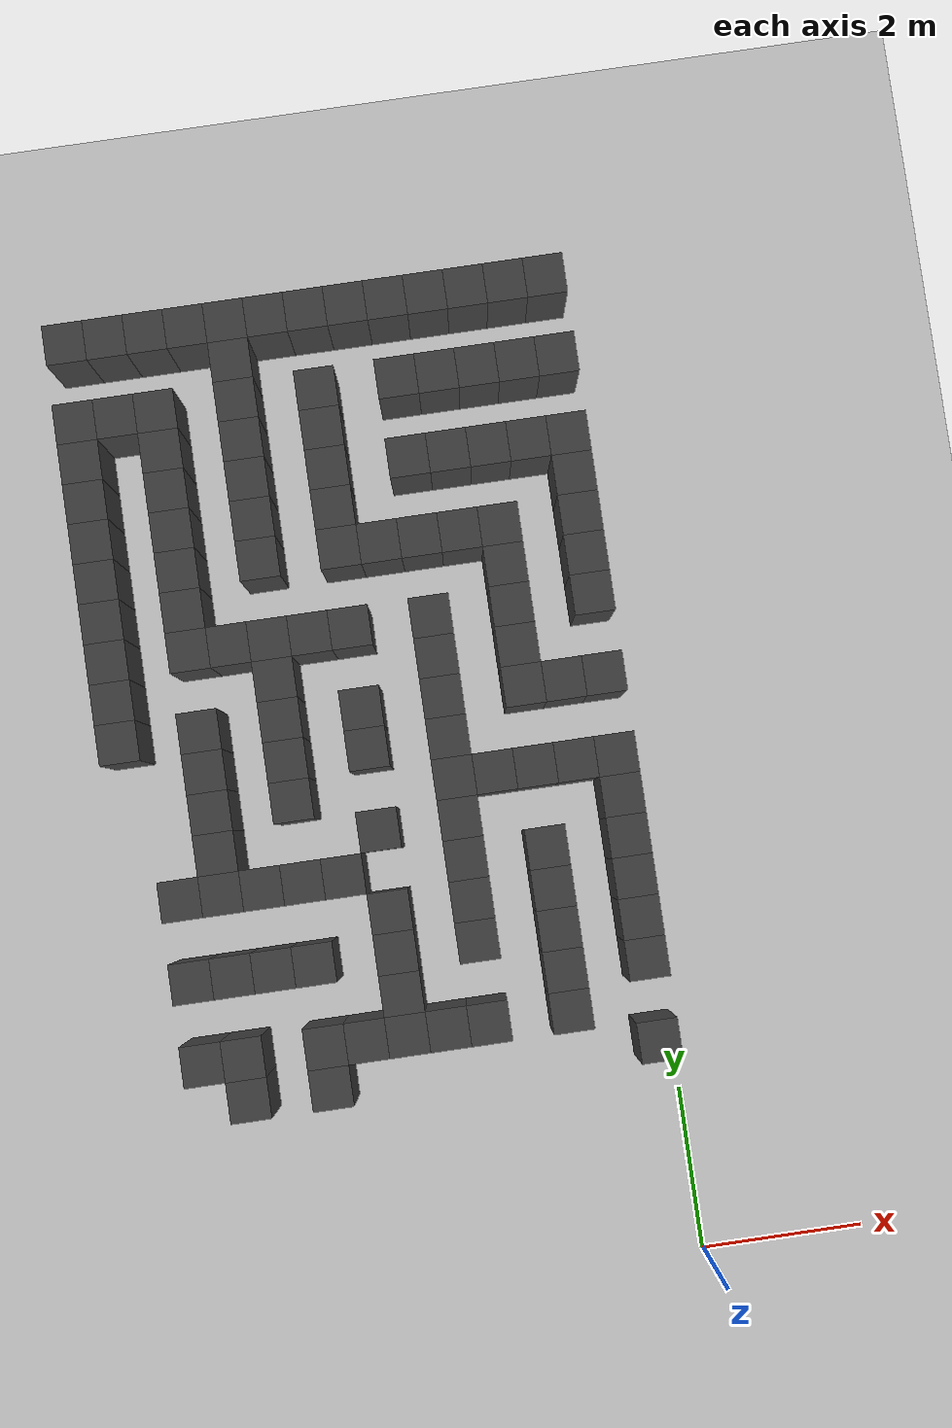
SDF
<sdf version="1.7">
 <world name="map_16884">
  <model name="ground_plane">
   <static>true</static>
   <link name="link">
    <collision name="collision">
     <geometry><plane><normal>0 0 1</normal><size>200 200</size></plane></geometry>
    </collision>
    <visual name="visual">
     <geometry><plane><normal>0 0 1</normal><size>200 200</size></plane></geometry>
     <material><ambient>0.8 0.8 0.8 1</ambient><diffuse>0.8 0.8 0.8 1</diffuse></material>
    </visual>
   </link>
  </model>
  <model name="maze_environment">
   <static>true</static>
   <link name="wall_12">
    <pose>-6.250 12.250 0.500 0 0 0</pose>
    <collision name="col"><geometry><box><size>0.5 0.5 1.0</size></box></geometry></collision>
    <visual name="vis">
     <geometry><box><size>0.5 0.5 1.0</size></box></geometry>
     <material><ambient>0.15 0.15 0.15 1</ambient><diffuse>0.25 0.25 0.25 1</diffuse></material>
    </visual>
   </link>
   <link name="wall_13">
    <pose>-5.750 12.250 0.500 0 0 0</pose>
    <collision name="col"><geometry><box><size>0.5 0.5 1.0</size></box></geometry></collision>
    <visual name="vis">
     <geometry><box><size>0.5 0.5 1.0</size></box></geometry>
     <material><ambient>0.15 0.15 0.15 1</ambient><diffuse>0.25 0.25 0.25 1</diffuse></material>
    </visual>
   </link>
   <link name="wall_14">
    <pose>-5.250 12.250 0.500 0 0 0</pose>
    <collision name="col"><geometry><box><size>0.5 0.5 1.0</size></box></geometry></collision>
    <visual name="vis">
     <geometry><box><size>0.5 0.5 1.0</size></box></geometry>
     <material><ambient>0.15 0.15 0.15 1</ambient><diffuse>0.25 0.25 0.25 1</diffuse></material>
    </visual>
   </link>
   <link name="wall_15">
    <pose>-4.750 12.250 0.500 0 0 0</pose>
    <collision name="col"><geometry><box><size>0.5 0.5 1.0</size></box></geometry></collision>
    <visual name="vis">
     <geometry><box><size>0.5 0.5 1.0</size></box></geometry>
     <material><ambient>0.15 0.15 0.15 1</ambient><diffuse>0.25 0.25 0.25 1</diffuse></material>
    </visual>
   </link>
   <link name="wall_16">
    <pose>-4.250 12.250 0.500 0 0 0</pose>
    <collision name="col"><geometry><box><size>0.5 0.5 1.0</size></box></geometry></collision>
    <visual name="vis">
     <geometry><box><size>0.5 0.5 1.0</size></box></geometry>
     <material><ambient>0.15 0.15 0.15 1</ambient><diffuse>0.25 0.25 0.25 1</diffuse></material>
    </visual>
   </link>
   <link name="wall_17">
    <pose>-3.750 12.250 0.500 0 0 0</pose>
    <collision name="col"><geometry><box><size>0.5 0.5 1.0</size></box></geometry></collision>
    <visual name="vis">
     <geometry><box><size>0.5 0.5 1.0</size></box></geometry>
     <material><ambient>0.15 0.15 0.15 1</ambient><diffuse>0.25 0.25 0.25 1</diffuse></material>
    </visual>
   </link>
   <link name="wall_18">
    <pose>-3.250 12.250 0.500 0 0 0</pose>
    <collision name="col"><geometry><box><size>0.5 0.5 1.0</size></box></geometry></collision>
    <visual name="vis">
     <geometry><box><size>0.5 0.5 1.0</size></box></geometry>
     <material><ambient>0.15 0.15 0.15 1</ambient><diffuse>0.25 0.25 0.25 1</diffuse></material>
    </visual>
   </link>
   <link name="wall_19">
    <pose>-2.750 12.250 0.500 0 0 0</pose>
    <collision name="col"><geometry><box><size>0.5 0.5 1.0</size></box></geometry></collision>
    <visual name="vis">
     <geometry><box><size>0.5 0.5 1.0</size></box></geometry>
     <material><ambient>0.15 0.15 0.15 1</ambient><diffuse>0.25 0.25 0.25 1</diffuse></material>
    </visual>
   </link>
   <link name="wall_20">
    <pose>-2.250 12.250 0.500 0 0 0</pose>
    <collision name="col"><geometry><box><size>0.5 0.5 1.0</size></box></geometry></collision>
    <visual name="vis">
     <geometry><box><size>0.5 0.5 1.0</size></box></geometry>
     <material><ambient>0.15 0.15 0.15 1</ambient><diffuse>0.25 0.25 0.25 1</diffuse></material>
    </visual>
   </link>
   <link name="wall_21">
    <pose>-1.750 12.250 0.500 0 0 0</pose>
    <collision name="col"><geometry><box><size>0.5 0.5 1.0</size></box></geometry></collision>
    <visual name="vis">
     <geometry><box><size>0.5 0.5 1.0</size></box></geometry>
     <material><ambient>0.15 0.15 0.15 1</ambient><diffuse>0.25 0.25 0.25 1</diffuse></material>
    </visual>
   </link>
   <link name="wall_22">
    <pose>-1.250 12.250 0.500 0 0 0</pose>
    <collision name="col"><geometry><box><size>0.5 0.5 1.0</size></box></geometry></collision>
    <visual name="vis">
     <geometry><box><size>0.5 0.5 1.0</size></box></geometry>
     <material><ambient>0.15 0.15 0.15 1</ambient><diffuse>0.25 0.25 0.25 1</diffuse></material>
    </visual>
   </link>
   <link name="wall_23">
    <pose>-0.750 12.250 0.500 0 0 0</pose>
    <collision name="col"><geometry><box><size>0.5 0.5 1.0</size></box></geometry></collision>
    <visual name="vis">
     <geometry><box><size>0.5 0.5 1.0</size></box></geometry>
     <material><ambient>0.15 0.15 0.15 1</ambient><diffuse>0.25 0.25 0.25 1</diffuse></material>
    </visual>
   </link>
   <link name="wall_24">
    <pose>-0.250 12.250 0.500 0 0 0</pose>
    <collision name="col"><geometry><box><size>0.5 0.5 1.0</size></box></geometry></collision>
    <visual name="vis">
     <geometry><box><size>0.5 0.5 1.0</size></box></geometry>
     <material><ambient>0.15 0.15 0.15 1</ambient><diffuse>0.25 0.25 0.25 1</diffuse></material>
    </visual>
   </link>
   <link name="wall_52">
    <pose>-4.250 11.750 0.500 0 0 0</pose>
    <collision name="col"><geometry><box><size>0.5 0.5 1.0</size></box></geometry></collision>
    <visual name="vis">
     <geometry><box><size>0.5 0.5 1.0</size></box></geometry>
     <material><ambient>0.15 0.15 0.15 1</ambient><diffuse>0.25 0.25 0.25 1</diffuse></material>
    </visual>
   </link>
   <link name="wall_67">
    <pose>-6.250 11.250 0.500 0 0 0</pose>
    <collision name="col"><geometry><box><size>0.5 0.5 1.0</size></box></geometry></collision>
    <visual name="vis">
     <geometry><box><size>0.5 0.5 1.0</size></box></geometry>
     <material><ambient>0.15 0.15 0.15 1</ambient><diffuse>0.25 0.25 0.25 1</diffuse></material>
    </visual>
   </link>
   <link name="wall_68">
    <pose>-5.750 11.250 0.500 0 0 0</pose>
    <collision name="col"><geometry><box><size>0.5 0.5 1.0</size></box></geometry></collision>
    <visual name="vis">
     <geometry><box><size>0.5 0.5 1.0</size></box></geometry>
     <material><ambient>0.15 0.15 0.15 1</ambient><diffuse>0.25 0.25 0.25 1</diffuse></material>
    </visual>
   </link>
   <link name="wall_69">
    <pose>-5.250 11.250 0.500 0 0 0</pose>
    <collision name="col"><geometry><box><size>0.5 0.5 1.0</size></box></geometry></collision>
    <visual name="vis">
     <geometry><box><size>0.5 0.5 1.0</size></box></geometry>
     <material><ambient>0.15 0.15 0.15 1</ambient><diffuse>0.25 0.25 0.25 1</diffuse></material>
    </visual>
   </link>
   <link name="wall_70">
    <pose>-4.250 11.250 0.500 0 0 0</pose>
    <collision name="col"><geometry><box><size>0.5 0.5 1.0</size></box></geometry></collision>
    <visual name="vis">
     <geometry><box><size>0.5 0.5 1.0</size></box></geometry>
     <material><ambient>0.15 0.15 0.15 1</ambient><diffuse>0.25 0.25 0.25 1</diffuse></material>
    </visual>
   </link>
   <link name="wall_71">
    <pose>-3.250 11.250 0.500 0 0 0</pose>
    <collision name="col"><geometry><box><size>0.5 0.5 1.0</size></box></geometry></collision>
    <visual name="vis">
     <geometry><box><size>0.5 0.5 1.0</size></box></geometry>
     <material><ambient>0.15 0.15 0.15 1</ambient><diffuse>0.25 0.25 0.25 1</diffuse></material>
    </visual>
   </link>
   <link name="wall_72">
    <pose>-2.250 11.250 0.500 0 0 0</pose>
    <collision name="col"><geometry><box><size>0.5 0.5 1.0</size></box></geometry></collision>
    <visual name="vis">
     <geometry><box><size>0.5 0.5 1.0</size></box></geometry>
     <material><ambient>0.15 0.15 0.15 1</ambient><diffuse>0.25 0.25 0.25 1</diffuse></material>
    </visual>
   </link>
   <link name="wall_73">
    <pose>-1.750 11.250 0.500 0 0 0</pose>
    <collision name="col"><geometry><box><size>0.5 0.5 1.0</size></box></geometry></collision>
    <visual name="vis">
     <geometry><box><size>0.5 0.5 1.0</size></box></geometry>
     <material><ambient>0.15 0.15 0.15 1</ambient><diffuse>0.25 0.25 0.25 1</diffuse></material>
    </visual>
   </link>
   <link name="wall_74">
    <pose>-1.250 11.250 0.500 0 0 0</pose>
    <collision name="col"><geometry><box><size>0.5 0.5 1.0</size></box></geometry></collision>
    <visual name="vis">
     <geometry><box><size>0.5 0.5 1.0</size></box></geometry>
     <material><ambient>0.15 0.15 0.15 1</ambient><diffuse>0.25 0.25 0.25 1</diffuse></material>
    </visual>
   </link>
   <link name="wall_75">
    <pose>-0.750 11.250 0.500 0 0 0</pose>
    <collision name="col"><geometry><box><size>0.5 0.5 1.0</size></box></geometry></collision>
    <visual name="vis">
     <geometry><box><size>0.5 0.5 1.0</size></box></geometry>
     <material><ambient>0.15 0.15 0.15 1</ambient><diffuse>0.25 0.25 0.25 1</diffuse></material>
    </visual>
   </link>
   <link name="wall_76">
    <pose>-0.250 11.250 0.500 0 0 0</pose>
    <collision name="col"><geometry><box><size>0.5 0.5 1.0</size></box></geometry></collision>
    <visual name="vis">
     <geometry><box><size>0.5 0.5 1.0</size></box></geometry>
     <material><ambient>0.15 0.15 0.15 1</ambient><diffuse>0.25 0.25 0.25 1</diffuse></material>
    </visual>
   </link>
   <link name="wall_98">
    <pose>-6.250 10.750 0.500 0 0 0</pose>
    <collision name="col"><geometry><box><size>0.5 0.5 1.0</size></box></geometry></collision>
    <visual name="vis">
     <geometry><box><size>0.5 0.5 1.0</size></box></geometry>
     <material><ambient>0.15 0.15 0.15 1</ambient><diffuse>0.25 0.25 0.25 1</diffuse></material>
    </visual>
   </link>
   <link name="wall_99">
    <pose>-5.250 10.750 0.500 0 0 0</pose>
    <collision name="col"><geometry><box><size>0.5 0.5 1.0</size></box></geometry></collision>
    <visual name="vis">
     <geometry><box><size>0.5 0.5 1.0</size></box></geometry>
     <material><ambient>0.15 0.15 0.15 1</ambient><diffuse>0.25 0.25 0.25 1</diffuse></material>
    </visual>
   </link>
   <link name="wall_100">
    <pose>-4.250 10.750 0.500 0 0 0</pose>
    <collision name="col"><geometry><box><size>0.5 0.5 1.0</size></box></geometry></collision>
    <visual name="vis">
     <geometry><box><size>0.5 0.5 1.0</size></box></geometry>
     <material><ambient>0.15 0.15 0.15 1</ambient><diffuse>0.25 0.25 0.25 1</diffuse></material>
    </visual>
   </link>
   <link name="wall_101">
    <pose>-3.250 10.750 0.500 0 0 0</pose>
    <collision name="col"><geometry><box><size>0.5 0.5 1.0</size></box></geometry></collision>
    <visual name="vis">
     <geometry><box><size>0.5 0.5 1.0</size></box></geometry>
     <material><ambient>0.15 0.15 0.15 1</ambient><diffuse>0.25 0.25 0.25 1</diffuse></material>
    </visual>
   </link>
   <link name="wall_114">
    <pose>-6.250 10.250 0.500 0 0 0</pose>
    <collision name="col"><geometry><box><size>0.5 0.5 1.0</size></box></geometry></collision>
    <visual name="vis">
     <geometry><box><size>0.5 0.5 1.0</size></box></geometry>
     <material><ambient>0.15 0.15 0.15 1</ambient><diffuse>0.25 0.25 0.25 1</diffuse></material>
    </visual>
   </link>
   <link name="wall_115">
    <pose>-5.250 10.250 0.500 0 0 0</pose>
    <collision name="col"><geometry><box><size>0.5 0.5 1.0</size></box></geometry></collision>
    <visual name="vis">
     <geometry><box><size>0.5 0.5 1.0</size></box></geometry>
     <material><ambient>0.15 0.15 0.15 1</ambient><diffuse>0.25 0.25 0.25 1</diffuse></material>
    </visual>
   </link>
   <link name="wall_116">
    <pose>-4.250 10.250 0.500 0 0 0</pose>
    <collision name="col"><geometry><box><size>0.5 0.5 1.0</size></box></geometry></collision>
    <visual name="vis">
     <geometry><box><size>0.5 0.5 1.0</size></box></geometry>
     <material><ambient>0.15 0.15 0.15 1</ambient><diffuse>0.25 0.25 0.25 1</diffuse></material>
    </visual>
   </link>
   <link name="wall_117">
    <pose>-3.250 10.250 0.500 0 0 0</pose>
    <collision name="col"><geometry><box><size>0.5 0.5 1.0</size></box></geometry></collision>
    <visual name="vis">
     <geometry><box><size>0.5 0.5 1.0</size></box></geometry>
     <material><ambient>0.15 0.15 0.15 1</ambient><diffuse>0.25 0.25 0.25 1</diffuse></material>
    </visual>
   </link>
   <link name="wall_118">
    <pose>-2.250 10.250 0.500 0 0 0</pose>
    <collision name="col"><geometry><box><size>0.5 0.5 1.0</size></box></geometry></collision>
    <visual name="vis">
     <geometry><box><size>0.5 0.5 1.0</size></box></geometry>
     <material><ambient>0.15 0.15 0.15 1</ambient><diffuse>0.25 0.25 0.25 1</diffuse></material>
    </visual>
   </link>
   <link name="wall_119">
    <pose>-1.750 10.250 0.500 0 0 0</pose>
    <collision name="col"><geometry><box><size>0.5 0.5 1.0</size></box></geometry></collision>
    <visual name="vis">
     <geometry><box><size>0.5 0.5 1.0</size></box></geometry>
     <material><ambient>0.15 0.15 0.15 1</ambient><diffuse>0.25 0.25 0.25 1</diffuse></material>
    </visual>
   </link>
   <link name="wall_120">
    <pose>-1.250 10.250 0.500 0 0 0</pose>
    <collision name="col"><geometry><box><size>0.5 0.5 1.0</size></box></geometry></collision>
    <visual name="vis">
     <geometry><box><size>0.5 0.5 1.0</size></box></geometry>
     <material><ambient>0.15 0.15 0.15 1</ambient><diffuse>0.25 0.25 0.25 1</diffuse></material>
    </visual>
   </link>
   <link name="wall_121">
    <pose>-0.750 10.250 0.500 0 0 0</pose>
    <collision name="col"><geometry><box><size>0.5 0.5 1.0</size></box></geometry></collision>
    <visual name="vis">
     <geometry><box><size>0.5 0.5 1.0</size></box></geometry>
     <material><ambient>0.15 0.15 0.15 1</ambient><diffuse>0.25 0.25 0.25 1</diffuse></material>
    </visual>
   </link>
   <link name="wall_122">
    <pose>-0.250 10.250 0.500 0 0 0</pose>
    <collision name="col"><geometry><box><size>0.5 0.5 1.0</size></box></geometry></collision>
    <visual name="vis">
     <geometry><box><size>0.5 0.5 1.0</size></box></geometry>
     <material><ambient>0.15 0.15 0.15 1</ambient><diffuse>0.25 0.25 0.25 1</diffuse></material>
    </visual>
   </link>
   <link name="wall_147">
    <pose>-6.250 9.750 0.500 0 0 0</pose>
    <collision name="col"><geometry><box><size>0.5 0.5 1.0</size></box></geometry></collision>
    <visual name="vis">
     <geometry><box><size>0.5 0.5 1.0</size></box></geometry>
     <material><ambient>0.15 0.15 0.15 1</ambient><diffuse>0.25 0.25 0.25 1</diffuse></material>
    </visual>
   </link>
   <link name="wall_148">
    <pose>-5.250 9.750 0.500 0 0 0</pose>
    <collision name="col"><geometry><box><size>0.5 0.5 1.0</size></box></geometry></collision>
    <visual name="vis">
     <geometry><box><size>0.5 0.5 1.0</size></box></geometry>
     <material><ambient>0.15 0.15 0.15 1</ambient><diffuse>0.25 0.25 0.25 1</diffuse></material>
    </visual>
   </link>
   <link name="wall_149">
    <pose>-4.250 9.750 0.500 0 0 0</pose>
    <collision name="col"><geometry><box><size>0.5 0.5 1.0</size></box></geometry></collision>
    <visual name="vis">
     <geometry><box><size>0.5 0.5 1.0</size></box></geometry>
     <material><ambient>0.15 0.15 0.15 1</ambient><diffuse>0.25 0.25 0.25 1</diffuse></material>
    </visual>
   </link>
   <link name="wall_150">
    <pose>-3.250 9.750 0.500 0 0 0</pose>
    <collision name="col"><geometry><box><size>0.5 0.5 1.0</size></box></geometry></collision>
    <visual name="vis">
     <geometry><box><size>0.5 0.5 1.0</size></box></geometry>
     <material><ambient>0.15 0.15 0.15 1</ambient><diffuse>0.25 0.25 0.25 1</diffuse></material>
    </visual>
   </link>
   <link name="wall_151">
    <pose>-0.250 9.750 0.500 0 0 0</pose>
    <collision name="col"><geometry><box><size>0.5 0.5 1.0</size></box></geometry></collision>
    <visual name="vis">
     <geometry><box><size>0.5 0.5 1.0</size></box></geometry>
     <material><ambient>0.15 0.15 0.15 1</ambient><diffuse>0.25 0.25 0.25 1</diffuse></material>
    </visual>
   </link>
   <link name="wall_167">
    <pose>-6.250 9.250 0.500 0 0 0</pose>
    <collision name="col"><geometry><box><size>0.5 0.5 1.0</size></box></geometry></collision>
    <visual name="vis">
     <geometry><box><size>0.5 0.5 1.0</size></box></geometry>
     <material><ambient>0.15 0.15 0.15 1</ambient><diffuse>0.25 0.25 0.25 1</diffuse></material>
    </visual>
   </link>
   <link name="wall_168">
    <pose>-5.250 9.250 0.500 0 0 0</pose>
    <collision name="col"><geometry><box><size>0.5 0.5 1.0</size></box></geometry></collision>
    <visual name="vis">
     <geometry><box><size>0.5 0.5 1.0</size></box></geometry>
     <material><ambient>0.15 0.15 0.15 1</ambient><diffuse>0.25 0.25 0.25 1</diffuse></material>
    </visual>
   </link>
   <link name="wall_169">
    <pose>-4.250 9.250 0.500 0 0 0</pose>
    <collision name="col"><geometry><box><size>0.5 0.5 1.0</size></box></geometry></collision>
    <visual name="vis">
     <geometry><box><size>0.5 0.5 1.0</size></box></geometry>
     <material><ambient>0.15 0.15 0.15 1</ambient><diffuse>0.25 0.25 0.25 1</diffuse></material>
    </visual>
   </link>
   <link name="wall_170">
    <pose>-3.250 9.250 0.500 0 0 0</pose>
    <collision name="col"><geometry><box><size>0.5 0.5 1.0</size></box></geometry></collision>
    <visual name="vis">
     <geometry><box><size>0.5 0.5 1.0</size></box></geometry>
     <material><ambient>0.15 0.15 0.15 1</ambient><diffuse>0.25 0.25 0.25 1</diffuse></material>
    </visual>
   </link>
   <link name="wall_171">
    <pose>-2.750 9.250 0.500 0 0 0</pose>
    <collision name="col"><geometry><box><size>0.5 0.5 1.0</size></box></geometry></collision>
    <visual name="vis">
     <geometry><box><size>0.5 0.5 1.0</size></box></geometry>
     <material><ambient>0.15 0.15 0.15 1</ambient><diffuse>0.25 0.25 0.25 1</diffuse></material>
    </visual>
   </link>
   <link name="wall_172">
    <pose>-2.250 9.250 0.500 0 0 0</pose>
    <collision name="col"><geometry><box><size>0.5 0.5 1.0</size></box></geometry></collision>
    <visual name="vis">
     <geometry><box><size>0.5 0.5 1.0</size></box></geometry>
     <material><ambient>0.15 0.15 0.15 1</ambient><diffuse>0.25 0.25 0.25 1</diffuse></material>
    </visual>
   </link>
   <link name="wall_173">
    <pose>-1.750 9.250 0.500 0 0 0</pose>
    <collision name="col"><geometry><box><size>0.5 0.5 1.0</size></box></geometry></collision>
    <visual name="vis">
     <geometry><box><size>0.5 0.5 1.0</size></box></geometry>
     <material><ambient>0.15 0.15 0.15 1</ambient><diffuse>0.25 0.25 0.25 1</diffuse></material>
    </visual>
   </link>
   <link name="wall_174">
    <pose>-1.250 9.250 0.500 0 0 0</pose>
    <collision name="col"><geometry><box><size>0.5 0.5 1.0</size></box></geometry></collision>
    <visual name="vis">
     <geometry><box><size>0.5 0.5 1.0</size></box></geometry>
     <material><ambient>0.15 0.15 0.15 1</ambient><diffuse>0.25 0.25 0.25 1</diffuse></material>
    </visual>
   </link>
   <link name="wall_175">
    <pose>-0.250 9.250 0.500 0 0 0</pose>
    <collision name="col"><geometry><box><size>0.5 0.5 1.0</size></box></geometry></collision>
    <visual name="vis">
     <geometry><box><size>0.5 0.5 1.0</size></box></geometry>
     <material><ambient>0.15 0.15 0.15 1</ambient><diffuse>0.25 0.25 0.25 1</diffuse></material>
    </visual>
   </link>
   <link name="wall_196">
    <pose>-6.250 8.750 0.500 0 0 0</pose>
    <collision name="col"><geometry><box><size>0.5 0.5 1.0</size></box></geometry></collision>
    <visual name="vis">
     <geometry><box><size>0.5 0.5 1.0</size></box></geometry>
     <material><ambient>0.15 0.15 0.15 1</ambient><diffuse>0.25 0.25 0.25 1</diffuse></material>
    </visual>
   </link>
   <link name="wall_197">
    <pose>-5.250 8.750 0.500 0 0 0</pose>
    <collision name="col"><geometry><box><size>0.5 0.5 1.0</size></box></geometry></collision>
    <visual name="vis">
     <geometry><box><size>0.5 0.5 1.0</size></box></geometry>
     <material><ambient>0.15 0.15 0.15 1</ambient><diffuse>0.25 0.25 0.25 1</diffuse></material>
    </visual>
   </link>
   <link name="wall_198">
    <pose>-1.250 8.750 0.500 0 0 0</pose>
    <collision name="col"><geometry><box><size>0.5 0.5 1.0</size></box></geometry></collision>
    <visual name="vis">
     <geometry><box><size>0.5 0.5 1.0</size></box></geometry>
     <material><ambient>0.15 0.15 0.15 1</ambient><diffuse>0.25 0.25 0.25 1</diffuse></material>
    </visual>
   </link>
   <link name="wall_199">
    <pose>-0.250 8.750 0.500 0 0 0</pose>
    <collision name="col"><geometry><box><size>0.5 0.5 1.0</size></box></geometry></collision>
    <visual name="vis">
     <geometry><box><size>0.5 0.5 1.0</size></box></geometry>
     <material><ambient>0.15 0.15 0.15 1</ambient><diffuse>0.25 0.25 0.25 1</diffuse></material>
    </visual>
   </link>
   <link name="wall_216">
    <pose>-6.250 8.250 0.500 0 0 0</pose>
    <collision name="col"><geometry><box><size>0.5 0.5 1.0</size></box></geometry></collision>
    <visual name="vis">
     <geometry><box><size>0.5 0.5 1.0</size></box></geometry>
     <material><ambient>0.15 0.15 0.15 1</ambient><diffuse>0.25 0.25 0.25 1</diffuse></material>
    </visual>
   </link>
   <link name="wall_217">
    <pose>-5.250 8.250 0.500 0 0 0</pose>
    <collision name="col"><geometry><box><size>0.5 0.5 1.0</size></box></geometry></collision>
    <visual name="vis">
     <geometry><box><size>0.5 0.5 1.0</size></box></geometry>
     <material><ambient>0.15 0.15 0.15 1</ambient><diffuse>0.25 0.25 0.25 1</diffuse></material>
    </visual>
   </link>
   <link name="wall_218">
    <pose>-4.750 8.250 0.500 0 0 0</pose>
    <collision name="col"><geometry><box><size>0.5 0.5 1.0</size></box></geometry></collision>
    <visual name="vis">
     <geometry><box><size>0.5 0.5 1.0</size></box></geometry>
     <material><ambient>0.15 0.15 0.15 1</ambient><diffuse>0.25 0.25 0.25 1</diffuse></material>
    </visual>
   </link>
   <link name="wall_219">
    <pose>-4.250 8.250 0.500 0 0 0</pose>
    <collision name="col"><geometry><box><size>0.5 0.5 1.0</size></box></geometry></collision>
    <visual name="vis">
     <geometry><box><size>0.5 0.5 1.0</size></box></geometry>
     <material><ambient>0.15 0.15 0.15 1</ambient><diffuse>0.25 0.25 0.25 1</diffuse></material>
    </visual>
   </link>
   <link name="wall_220">
    <pose>-3.750 8.250 0.500 0 0 0</pose>
    <collision name="col"><geometry><box><size>0.5 0.5 1.0</size></box></geometry></collision>
    <visual name="vis">
     <geometry><box><size>0.5 0.5 1.0</size></box></geometry>
     <material><ambient>0.15 0.15 0.15 1</ambient><diffuse>0.25 0.25 0.25 1</diffuse></material>
    </visual>
   </link>
   <link name="wall_221">
    <pose>-3.250 8.250 0.500 0 0 0</pose>
    <collision name="col"><geometry><box><size>0.5 0.5 1.0</size></box></geometry></collision>
    <visual name="vis">
     <geometry><box><size>0.5 0.5 1.0</size></box></geometry>
     <material><ambient>0.15 0.15 0.15 1</ambient><diffuse>0.25 0.25 0.25 1</diffuse></material>
    </visual>
   </link>
   <link name="wall_222">
    <pose>-2.250 8.250 0.500 0 0 0</pose>
    <collision name="col"><geometry><box><size>0.5 0.5 1.0</size></box></geometry></collision>
    <visual name="vis">
     <geometry><box><size>0.5 0.5 1.0</size></box></geometry>
     <material><ambient>0.15 0.15 0.15 1</ambient><diffuse>0.25 0.25 0.25 1</diffuse></material>
    </visual>
   </link>
   <link name="wall_223">
    <pose>-1.250 8.250 0.500 0 0 0</pose>
    <collision name="col"><geometry><box><size>0.5 0.5 1.0</size></box></geometry></collision>
    <visual name="vis">
     <geometry><box><size>0.5 0.5 1.0</size></box></geometry>
     <material><ambient>0.15 0.15 0.15 1</ambient><diffuse>0.25 0.25 0.25 1</diffuse></material>
    </visual>
   </link>
   <link name="wall_224">
    <pose>-0.250 8.250 0.500 0 0 0</pose>
    <collision name="col"><geometry><box><size>0.5 0.5 1.0</size></box></geometry></collision>
    <visual name="vis">
     <geometry><box><size>0.5 0.5 1.0</size></box></geometry>
     <material><ambient>0.15 0.15 0.15 1</ambient><diffuse>0.25 0.25 0.25 1</diffuse></material>
    </visual>
   </link>
   <link name="wall_244">
    <pose>-6.250 7.750 0.500 0 0 0</pose>
    <collision name="col"><geometry><box><size>0.5 0.5 1.0</size></box></geometry></collision>
    <visual name="vis">
     <geometry><box><size>0.5 0.5 1.0</size></box></geometry>
     <material><ambient>0.15 0.15 0.15 1</ambient><diffuse>0.25 0.25 0.25 1</diffuse></material>
    </visual>
   </link>
   <link name="wall_245">
    <pose>-4.250 7.750 0.500 0 0 0</pose>
    <collision name="col"><geometry><box><size>0.5 0.5 1.0</size></box></geometry></collision>
    <visual name="vis">
     <geometry><box><size>0.5 0.5 1.0</size></box></geometry>
     <material><ambient>0.15 0.15 0.15 1</ambient><diffuse>0.25 0.25 0.25 1</diffuse></material>
    </visual>
   </link>
   <link name="wall_246">
    <pose>-2.250 7.750 0.500 0 0 0</pose>
    <collision name="col"><geometry><box><size>0.5 0.5 1.0</size></box></geometry></collision>
    <visual name="vis">
     <geometry><box><size>0.5 0.5 1.0</size></box></geometry>
     <material><ambient>0.15 0.15 0.15 1</ambient><diffuse>0.25 0.25 0.25 1</diffuse></material>
    </visual>
   </link>
   <link name="wall_247">
    <pose>-1.250 7.750 0.500 0 0 0</pose>
    <collision name="col"><geometry><box><size>0.5 0.5 1.0</size></box></geometry></collision>
    <visual name="vis">
     <geometry><box><size>0.5 0.5 1.0</size></box></geometry>
     <material><ambient>0.15 0.15 0.15 1</ambient><diffuse>0.25 0.25 0.25 1</diffuse></material>
    </visual>
   </link>
   <link name="wall_265">
    <pose>-6.250 7.250 0.500 0 0 0</pose>
    <collision name="col"><geometry><box><size>0.5 0.5 1.0</size></box></geometry></collision>
    <visual name="vis">
     <geometry><box><size>0.5 0.5 1.0</size></box></geometry>
     <material><ambient>0.15 0.15 0.15 1</ambient><diffuse>0.25 0.25 0.25 1</diffuse></material>
    </visual>
   </link>
   <link name="wall_266">
    <pose>-5.250 7.250 0.500 0 0 0</pose>
    <collision name="col"><geometry><box><size>0.5 0.5 1.0</size></box></geometry></collision>
    <visual name="vis">
     <geometry><box><size>0.5 0.5 1.0</size></box></geometry>
     <material><ambient>0.15 0.15 0.15 1</ambient><diffuse>0.25 0.25 0.25 1</diffuse></material>
    </visual>
   </link>
   <link name="wall_267">
    <pose>-4.250 7.250 0.500 0 0 0</pose>
    <collision name="col"><geometry><box><size>0.5 0.5 1.0</size></box></geometry></collision>
    <visual name="vis">
     <geometry><box><size>0.5 0.5 1.0</size></box></geometry>
     <material><ambient>0.15 0.15 0.15 1</ambient><diffuse>0.25 0.25 0.25 1</diffuse></material>
    </visual>
   </link>
   <link name="wall_268">
    <pose>-3.250 7.250 0.500 0 0 0</pose>
    <collision name="col"><geometry><box><size>0.5 0.5 1.0</size></box></geometry></collision>
    <visual name="vis">
     <geometry><box><size>0.5 0.5 1.0</size></box></geometry>
     <material><ambient>0.15 0.15 0.15 1</ambient><diffuse>0.25 0.25 0.25 1</diffuse></material>
    </visual>
   </link>
   <link name="wall_269">
    <pose>-2.250 7.250 0.500 0 0 0</pose>
    <collision name="col"><geometry><box><size>0.5 0.5 1.0</size></box></geometry></collision>
    <visual name="vis">
     <geometry><box><size>0.5 0.5 1.0</size></box></geometry>
     <material><ambient>0.15 0.15 0.15 1</ambient><diffuse>0.25 0.25 0.25 1</diffuse></material>
    </visual>
   </link>
   <link name="wall_270">
    <pose>-1.250 7.250 0.500 0 0 0</pose>
    <collision name="col"><geometry><box><size>0.5 0.5 1.0</size></box></geometry></collision>
    <visual name="vis">
     <geometry><box><size>0.5 0.5 1.0</size></box></geometry>
     <material><ambient>0.15 0.15 0.15 1</ambient><diffuse>0.25 0.25 0.25 1</diffuse></material>
    </visual>
   </link>
   <link name="wall_271">
    <pose>-0.750 7.250 0.500 0 0 0</pose>
    <collision name="col"><geometry><box><size>0.5 0.5 1.0</size></box></geometry></collision>
    <visual name="vis">
     <geometry><box><size>0.5 0.5 1.0</size></box></geometry>
     <material><ambient>0.15 0.15 0.15 1</ambient><diffuse>0.25 0.25 0.25 1</diffuse></material>
    </visual>
   </link>
   <link name="wall_272">
    <pose>-0.250 7.250 0.500 0 0 0</pose>
    <collision name="col"><geometry><box><size>0.5 0.5 1.0</size></box></geometry></collision>
    <visual name="vis">
     <geometry><box><size>0.5 0.5 1.0</size></box></geometry>
     <material><ambient>0.15 0.15 0.15 1</ambient><diffuse>0.25 0.25 0.25 1</diffuse></material>
    </visual>
   </link>
   <link name="wall_296">
    <pose>-5.250 6.750 0.500 0 0 0</pose>
    <collision name="col"><geometry><box><size>0.5 0.5 1.0</size></box></geometry></collision>
    <visual name="vis">
     <geometry><box><size>0.5 0.5 1.0</size></box></geometry>
     <material><ambient>0.15 0.15 0.15 1</ambient><diffuse>0.25 0.25 0.25 1</diffuse></material>
    </visual>
   </link>
   <link name="wall_297">
    <pose>-4.250 6.750 0.500 0 0 0</pose>
    <collision name="col"><geometry><box><size>0.5 0.5 1.0</size></box></geometry></collision>
    <visual name="vis">
     <geometry><box><size>0.5 0.5 1.0</size></box></geometry>
     <material><ambient>0.15 0.15 0.15 1</ambient><diffuse>0.25 0.25 0.25 1</diffuse></material>
    </visual>
   </link>
   <link name="wall_298">
    <pose>-3.250 6.750 0.500 0 0 0</pose>
    <collision name="col"><geometry><box><size>0.5 0.5 1.0</size></box></geometry></collision>
    <visual name="vis">
     <geometry><box><size>0.5 0.5 1.0</size></box></geometry>
     <material><ambient>0.15 0.15 0.15 1</ambient><diffuse>0.25 0.25 0.25 1</diffuse></material>
    </visual>
   </link>
   <link name="wall_299">
    <pose>-2.250 6.750 0.500 0 0 0</pose>
    <collision name="col"><geometry><box><size>0.5 0.5 1.0</size></box></geometry></collision>
    <visual name="vis">
     <geometry><box><size>0.5 0.5 1.0</size></box></geometry>
     <material><ambient>0.15 0.15 0.15 1</ambient><diffuse>0.25 0.25 0.25 1</diffuse></material>
    </visual>
   </link>
   <link name="wall_313">
    <pose>-5.250 6.250 0.500 0 0 0</pose>
    <collision name="col"><geometry><box><size>0.5 0.5 1.0</size></box></geometry></collision>
    <visual name="vis">
     <geometry><box><size>0.5 0.5 1.0</size></box></geometry>
     <material><ambient>0.15 0.15 0.15 1</ambient><diffuse>0.25 0.25 0.25 1</diffuse></material>
    </visual>
   </link>
   <link name="wall_314">
    <pose>-4.250 6.250 0.500 0 0 0</pose>
    <collision name="col"><geometry><box><size>0.5 0.5 1.0</size></box></geometry></collision>
    <visual name="vis">
     <geometry><box><size>0.5 0.5 1.0</size></box></geometry>
     <material><ambient>0.15 0.15 0.15 1</ambient><diffuse>0.25 0.25 0.25 1</diffuse></material>
    </visual>
   </link>
   <link name="wall_315">
    <pose>-2.250 6.250 0.500 0 0 0</pose>
    <collision name="col"><geometry><box><size>0.5 0.5 1.0</size></box></geometry></collision>
    <visual name="vis">
     <geometry><box><size>0.5 0.5 1.0</size></box></geometry>
     <material><ambient>0.15 0.15 0.15 1</ambient><diffuse>0.25 0.25 0.25 1</diffuse></material>
    </visual>
   </link>
   <link name="wall_316">
    <pose>-1.750 6.250 0.500 0 0 0</pose>
    <collision name="col"><geometry><box><size>0.5 0.5 1.0</size></box></geometry></collision>
    <visual name="vis">
     <geometry><box><size>0.5 0.5 1.0</size></box></geometry>
     <material><ambient>0.15 0.15 0.15 1</ambient><diffuse>0.25 0.25 0.25 1</diffuse></material>
    </visual>
   </link>
   <link name="wall_317">
    <pose>-1.250 6.250 0.500 0 0 0</pose>
    <collision name="col"><geometry><box><size>0.5 0.5 1.0</size></box></geometry></collision>
    <visual name="vis">
     <geometry><box><size>0.5 0.5 1.0</size></box></geometry>
     <material><ambient>0.15 0.15 0.15 1</ambient><diffuse>0.25 0.25 0.25 1</diffuse></material>
    </visual>
   </link>
   <link name="wall_318">
    <pose>-0.750 6.250 0.500 0 0 0</pose>
    <collision name="col"><geometry><box><size>0.5 0.5 1.0</size></box></geometry></collision>
    <visual name="vis">
     <geometry><box><size>0.5 0.5 1.0</size></box></geometry>
     <material><ambient>0.15 0.15 0.15 1</ambient><diffuse>0.25 0.25 0.25 1</diffuse></material>
    </visual>
   </link>
   <link name="wall_319">
    <pose>-0.250 6.250 0.500 0 0 0</pose>
    <collision name="col"><geometry><box><size>0.5 0.5 1.0</size></box></geometry></collision>
    <visual name="vis">
     <geometry><box><size>0.5 0.5 1.0</size></box></geometry>
     <material><ambient>0.15 0.15 0.15 1</ambient><diffuse>0.25 0.25 0.25 1</diffuse></material>
    </visual>
   </link>
   <link name="wall_339">
    <pose>-5.250 5.750 0.500 0 0 0</pose>
    <collision name="col"><geometry><box><size>0.5 0.5 1.0</size></box></geometry></collision>
    <visual name="vis">
     <geometry><box><size>0.5 0.5 1.0</size></box></geometry>
     <material><ambient>0.15 0.15 0.15 1</ambient><diffuse>0.25 0.25 0.25 1</diffuse></material>
    </visual>
   </link>
   <link name="wall_340">
    <pose>-3.250 5.750 0.500 0 0 0</pose>
    <collision name="col"><geometry><box><size>0.5 0.5 1.0</size></box></geometry></collision>
    <visual name="vis">
     <geometry><box><size>0.5 0.5 1.0</size></box></geometry>
     <material><ambient>0.15 0.15 0.15 1</ambient><diffuse>0.25 0.25 0.25 1</diffuse></material>
    </visual>
   </link>
   <link name="wall_341">
    <pose>-2.250 5.750 0.500 0 0 0</pose>
    <collision name="col"><geometry><box><size>0.5 0.5 1.0</size></box></geometry></collision>
    <visual name="vis">
     <geometry><box><size>0.5 0.5 1.0</size></box></geometry>
     <material><ambient>0.15 0.15 0.15 1</ambient><diffuse>0.25 0.25 0.25 1</diffuse></material>
    </visual>
   </link>
   <link name="wall_342">
    <pose>-0.250 5.750 0.500 0 0 0</pose>
    <collision name="col"><geometry><box><size>0.5 0.5 1.0</size></box></geometry></collision>
    <visual name="vis">
     <geometry><box><size>0.5 0.5 1.0</size></box></geometry>
     <material><ambient>0.15 0.15 0.15 1</ambient><diffuse>0.25 0.25 0.25 1</diffuse></material>
    </visual>
   </link>
   <link name="wall_361">
    <pose>-5.750 5.250 0.500 0 0 0</pose>
    <collision name="col"><geometry><box><size>0.5 0.5 1.0</size></box></geometry></collision>
    <visual name="vis">
     <geometry><box><size>0.5 0.5 1.0</size></box></geometry>
     <material><ambient>0.15 0.15 0.15 1</ambient><diffuse>0.25 0.25 0.25 1</diffuse></material>
    </visual>
   </link>
   <link name="wall_362">
    <pose>-5.250 5.250 0.500 0 0 0</pose>
    <collision name="col"><geometry><box><size>0.5 0.5 1.0</size></box></geometry></collision>
    <visual name="vis">
     <geometry><box><size>0.5 0.5 1.0</size></box></geometry>
     <material><ambient>0.15 0.15 0.15 1</ambient><diffuse>0.25 0.25 0.25 1</diffuse></material>
    </visual>
   </link>
   <link name="wall_363">
    <pose>-4.750 5.250 0.500 0 0 0</pose>
    <collision name="col"><geometry><box><size>0.5 0.5 1.0</size></box></geometry></collision>
    <visual name="vis">
     <geometry><box><size>0.5 0.5 1.0</size></box></geometry>
     <material><ambient>0.15 0.15 0.15 1</ambient><diffuse>0.25 0.25 0.25 1</diffuse></material>
    </visual>
   </link>
   <link name="wall_364">
    <pose>-4.250 5.250 0.500 0 0 0</pose>
    <collision name="col"><geometry><box><size>0.5 0.5 1.0</size></box></geometry></collision>
    <visual name="vis">
     <geometry><box><size>0.5 0.5 1.0</size></box></geometry>
     <material><ambient>0.15 0.15 0.15 1</ambient><diffuse>0.25 0.25 0.25 1</diffuse></material>
    </visual>
   </link>
   <link name="wall_365">
    <pose>-3.750 5.250 0.500 0 0 0</pose>
    <collision name="col"><geometry><box><size>0.5 0.5 1.0</size></box></geometry></collision>
    <visual name="vis">
     <geometry><box><size>0.5 0.5 1.0</size></box></geometry>
     <material><ambient>0.15 0.15 0.15 1</ambient><diffuse>0.25 0.25 0.25 1</diffuse></material>
    </visual>
   </link>
   <link name="wall_366">
    <pose>-2.250 5.250 0.500 0 0 0</pose>
    <collision name="col"><geometry><box><size>0.5 0.5 1.0</size></box></geometry></collision>
    <visual name="vis">
     <geometry><box><size>0.5 0.5 1.0</size></box></geometry>
     <material><ambient>0.15 0.15 0.15 1</ambient><diffuse>0.25 0.25 0.25 1</diffuse></material>
    </visual>
   </link>
   <link name="wall_367">
    <pose>-1.250 5.250 0.500 0 0 0</pose>
    <collision name="col"><geometry><box><size>0.5 0.5 1.0</size></box></geometry></collision>
    <visual name="vis">
     <geometry><box><size>0.5 0.5 1.0</size></box></geometry>
     <material><ambient>0.15 0.15 0.15 1</ambient><diffuse>0.25 0.25 0.25 1</diffuse></material>
    </visual>
   </link>
   <link name="wall_368">
    <pose>-0.250 5.250 0.500 0 0 0</pose>
    <collision name="col"><geometry><box><size>0.5 0.5 1.0</size></box></geometry></collision>
    <visual name="vis">
     <geometry><box><size>0.5 0.5 1.0</size></box></geometry>
     <material><ambient>0.15 0.15 0.15 1</ambient><diffuse>0.25 0.25 0.25 1</diffuse></material>
    </visual>
   </link>
   <link name="wall_388">
    <pose>-3.250 4.750 0.500 0 0 0</pose>
    <collision name="col"><geometry><box><size>0.5 0.5 1.0</size></box></geometry></collision>
    <visual name="vis">
     <geometry><box><size>0.5 0.5 1.0</size></box></geometry>
     <material><ambient>0.15 0.15 0.15 1</ambient><diffuse>0.25 0.25 0.25 1</diffuse></material>
    </visual>
   </link>
   <link name="wall_389">
    <pose>-2.250 4.750 0.500 0 0 0</pose>
    <collision name="col"><geometry><box><size>0.5 0.5 1.0</size></box></geometry></collision>
    <visual name="vis">
     <geometry><box><size>0.5 0.5 1.0</size></box></geometry>
     <material><ambient>0.15 0.15 0.15 1</ambient><diffuse>0.25 0.25 0.25 1</diffuse></material>
    </visual>
   </link>
   <link name="wall_390">
    <pose>-1.250 4.750 0.500 0 0 0</pose>
    <collision name="col"><geometry><box><size>0.5 0.5 1.0</size></box></geometry></collision>
    <visual name="vis">
     <geometry><box><size>0.5 0.5 1.0</size></box></geometry>
     <material><ambient>0.15 0.15 0.15 1</ambient><diffuse>0.25 0.25 0.25 1</diffuse></material>
    </visual>
   </link>
   <link name="wall_391">
    <pose>-0.250 4.750 0.500 0 0 0</pose>
    <collision name="col"><geometry><box><size>0.5 0.5 1.0</size></box></geometry></collision>
    <visual name="vis">
     <geometry><box><size>0.5 0.5 1.0</size></box></geometry>
     <material><ambient>0.15 0.15 0.15 1</ambient><diffuse>0.25 0.25 0.25 1</diffuse></material>
    </visual>
   </link>
   <link name="wall_409">
    <pose>-5.750 4.250 0.500 0 0 0</pose>
    <collision name="col"><geometry><box><size>0.5 0.5 1.0</size></box></geometry></collision>
    <visual name="vis">
     <geometry><box><size>0.5 0.5 1.0</size></box></geometry>
     <material><ambient>0.15 0.15 0.15 1</ambient><diffuse>0.25 0.25 0.25 1</diffuse></material>
    </visual>
   </link>
   <link name="wall_410">
    <pose>-5.250 4.250 0.500 0 0 0</pose>
    <collision name="col"><geometry><box><size>0.5 0.5 1.0</size></box></geometry></collision>
    <visual name="vis">
     <geometry><box><size>0.5 0.5 1.0</size></box></geometry>
     <material><ambient>0.15 0.15 0.15 1</ambient><diffuse>0.25 0.25 0.25 1</diffuse></material>
    </visual>
   </link>
   <link name="wall_411">
    <pose>-4.750 4.250 0.500 0 0 0</pose>
    <collision name="col"><geometry><box><size>0.5 0.5 1.0</size></box></geometry></collision>
    <visual name="vis">
     <geometry><box><size>0.5 0.5 1.0</size></box></geometry>
     <material><ambient>0.15 0.15 0.15 1</ambient><diffuse>0.25 0.25 0.25 1</diffuse></material>
    </visual>
   </link>
   <link name="wall_412">
    <pose>-4.250 4.250 0.500 0 0 0</pose>
    <collision name="col"><geometry><box><size>0.5 0.5 1.0</size></box></geometry></collision>
    <visual name="vis">
     <geometry><box><size>0.5 0.5 1.0</size></box></geometry>
     <material><ambient>0.15 0.15 0.15 1</ambient><diffuse>0.25 0.25 0.25 1</diffuse></material>
    </visual>
   </link>
   <link name="wall_413">
    <pose>-3.250 4.250 0.500 0 0 0</pose>
    <collision name="col"><geometry><box><size>0.5 0.5 1.0</size></box></geometry></collision>
    <visual name="vis">
     <geometry><box><size>0.5 0.5 1.0</size></box></geometry>
     <material><ambient>0.15 0.15 0.15 1</ambient><diffuse>0.25 0.25 0.25 1</diffuse></material>
    </visual>
   </link>
   <link name="wall_414">
    <pose>-2.250 4.250 0.500 0 0 0</pose>
    <collision name="col"><geometry><box><size>0.5 0.5 1.0</size></box></geometry></collision>
    <visual name="vis">
     <geometry><box><size>0.5 0.5 1.0</size></box></geometry>
     <material><ambient>0.15 0.15 0.15 1</ambient><diffuse>0.25 0.25 0.25 1</diffuse></material>
    </visual>
   </link>
   <link name="wall_415">
    <pose>-1.250 4.250 0.500 0 0 0</pose>
    <collision name="col"><geometry><box><size>0.5 0.5 1.0</size></box></geometry></collision>
    <visual name="vis">
     <geometry><box><size>0.5 0.5 1.0</size></box></geometry>
     <material><ambient>0.15 0.15 0.15 1</ambient><diffuse>0.25 0.25 0.25 1</diffuse></material>
    </visual>
   </link>
   <link name="wall_416">
    <pose>-0.250 4.250 0.500 0 0 0</pose>
    <collision name="col"><geometry><box><size>0.5 0.5 1.0</size></box></geometry></collision>
    <visual name="vis">
     <geometry><box><size>0.5 0.5 1.0</size></box></geometry>
     <material><ambient>0.15 0.15 0.15 1</ambient><diffuse>0.25 0.25 0.25 1</diffuse></material>
    </visual>
   </link>
   <link name="wall_439">
    <pose>-3.250 3.750 0.500 0 0 0</pose>
    <collision name="col"><geometry><box><size>0.5 0.5 1.0</size></box></geometry></collision>
    <visual name="vis">
     <geometry><box><size>0.5 0.5 1.0</size></box></geometry>
     <material><ambient>0.15 0.15 0.15 1</ambient><diffuse>0.25 0.25 0.25 1</diffuse></material>
    </visual>
   </link>
   <link name="wall_440">
    <pose>-1.250 3.750 0.500 0 0 0</pose>
    <collision name="col"><geometry><box><size>0.5 0.5 1.0</size></box></geometry></collision>
    <visual name="vis">
     <geometry><box><size>0.5 0.5 1.0</size></box></geometry>
     <material><ambient>0.15 0.15 0.15 1</ambient><diffuse>0.25 0.25 0.25 1</diffuse></material>
    </visual>
   </link>
   <link name="wall_441">
    <pose>-0.250 3.750 0.500 0 0 0</pose>
    <collision name="col"><geometry><box><size>0.5 0.5 1.0</size></box></geometry></collision>
    <visual name="vis">
     <geometry><box><size>0.5 0.5 1.0</size></box></geometry>
     <material><ambient>0.15 0.15 0.15 1</ambient><diffuse>0.25 0.25 0.25 1</diffuse></material>
    </visual>
   </link>
   <link name="wall_456">
    <pose>-5.750 3.250 0.500 0 0 0</pose>
    <collision name="col"><geometry><box><size>0.5 0.5 1.0</size></box></geometry></collision>
    <visual name="vis">
     <geometry><box><size>0.5 0.5 1.0</size></box></geometry>
     <material><ambient>0.15 0.15 0.15 1</ambient><diffuse>0.25 0.25 0.25 1</diffuse></material>
    </visual>
   </link>
   <link name="wall_457">
    <pose>-5.250 3.250 0.500 0 0 0</pose>
    <collision name="col"><geometry><box><size>0.5 0.5 1.0</size></box></geometry></collision>
    <visual name="vis">
     <geometry><box><size>0.5 0.5 1.0</size></box></geometry>
     <material><ambient>0.15 0.15 0.15 1</ambient><diffuse>0.25 0.25 0.25 1</diffuse></material>
    </visual>
   </link>
   <link name="wall_458">
    <pose>-4.250 3.250 0.500 0 0 0</pose>
    <collision name="col"><geometry><box><size>0.5 0.5 1.0</size></box></geometry></collision>
    <visual name="vis">
     <geometry><box><size>0.5 0.5 1.0</size></box></geometry>
     <material><ambient>0.15 0.15 0.15 1</ambient><diffuse>0.25 0.25 0.25 1</diffuse></material>
    </visual>
   </link>
   <link name="wall_459">
    <pose>-3.750 3.250 0.500 0 0 0</pose>
    <collision name="col"><geometry><box><size>0.5 0.5 1.0</size></box></geometry></collision>
    <visual name="vis">
     <geometry><box><size>0.5 0.5 1.0</size></box></geometry>
     <material><ambient>0.15 0.15 0.15 1</ambient><diffuse>0.25 0.25 0.25 1</diffuse></material>
    </visual>
   </link>
   <link name="wall_460">
    <pose>-3.250 3.250 0.500 0 0 0</pose>
    <collision name="col"><geometry><box><size>0.5 0.5 1.0</size></box></geometry></collision>
    <visual name="vis">
     <geometry><box><size>0.5 0.5 1.0</size></box></geometry>
     <material><ambient>0.15 0.15 0.15 1</ambient><diffuse>0.25 0.25 0.25 1</diffuse></material>
    </visual>
   </link>
   <link name="wall_461">
    <pose>-2.750 3.250 0.500 0 0 0</pose>
    <collision name="col"><geometry><box><size>0.5 0.5 1.0</size></box></geometry></collision>
    <visual name="vis">
     <geometry><box><size>0.5 0.5 1.0</size></box></geometry>
     <material><ambient>0.15 0.15 0.15 1</ambient><diffuse>0.25 0.25 0.25 1</diffuse></material>
    </visual>
   </link>
   <link name="wall_462">
    <pose>-2.250 3.250 0.500 0 0 0</pose>
    <collision name="col"><geometry><box><size>0.5 0.5 1.0</size></box></geometry></collision>
    <visual name="vis">
     <geometry><box><size>0.5 0.5 1.0</size></box></geometry>
     <material><ambient>0.15 0.15 0.15 1</ambient><diffuse>0.25 0.25 0.25 1</diffuse></material>
    </visual>
   </link>
   <link name="wall_463">
    <pose>-1.250 3.250 0.500 0 0 0</pose>
    <collision name="col"><geometry><box><size>0.5 0.5 1.0</size></box></geometry></collision>
    <visual name="vis">
     <geometry><box><size>0.5 0.5 1.0</size></box></geometry>
     <material><ambient>0.15 0.15 0.15 1</ambient><diffuse>0.25 0.25 0.25 1</diffuse></material>
    </visual>
   </link>
   <link name="wall_487">
    <pose>-5.250 2.750 0.500 0 0 0</pose>
    <collision name="col"><geometry><box><size>0.5 0.5 1.0</size></box></geometry></collision>
    <visual name="vis">
     <geometry><box><size>0.5 0.5 1.0</size></box></geometry>
     <material><ambient>0.15 0.15 0.15 1</ambient><diffuse>0.25 0.25 0.25 1</diffuse></material>
    </visual>
   </link>
   <link name="wall_488">
    <pose>-4.250 2.750 0.500 0 0 0</pose>
    <collision name="col"><geometry><box><size>0.5 0.5 1.0</size></box></geometry></collision>
    <visual name="vis">
     <geometry><box><size>0.5 0.5 1.0</size></box></geometry>
     <material><ambient>0.15 0.15 0.15 1</ambient><diffuse>0.25 0.25 0.25 1</diffuse></material>
    </visual>
   </link>
   <link name="wall_489">
    <pose>-0.250 2.750 0.500 0 0 0</pose>
    <collision name="col"><geometry><box><size>0.5 0.5 1.0</size></box></geometry></collision>
    <visual name="vis">
     <geometry><box><size>0.5 0.5 1.0</size></box></geometry>
     <material><ambient>0.15 0.15 0.15 1</ambient><diffuse>0.25 0.25 0.25 1</diffuse></material>
    </visual>
   </link>
  </model>
 </world>
</sdf>
